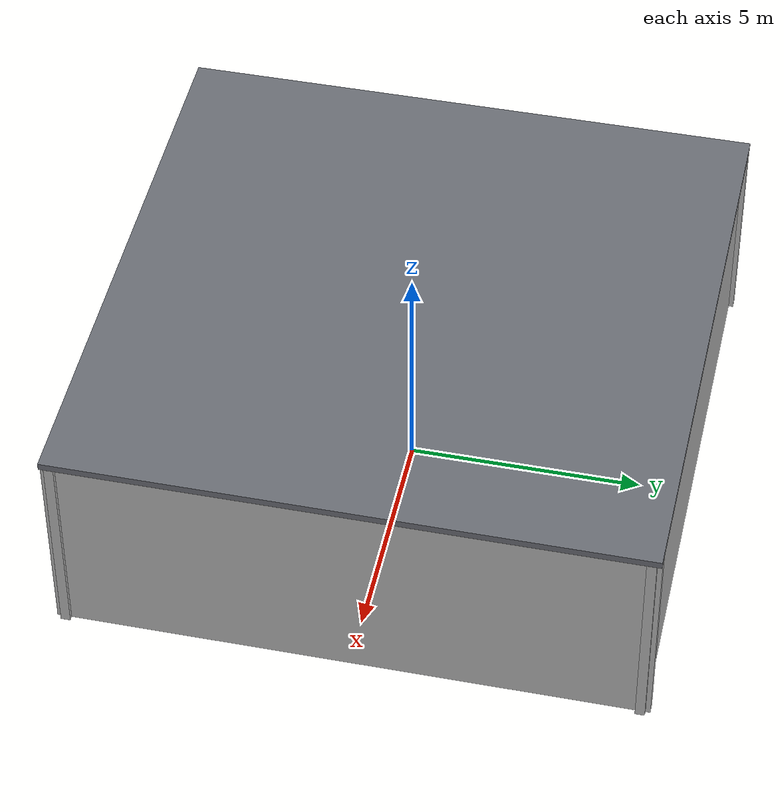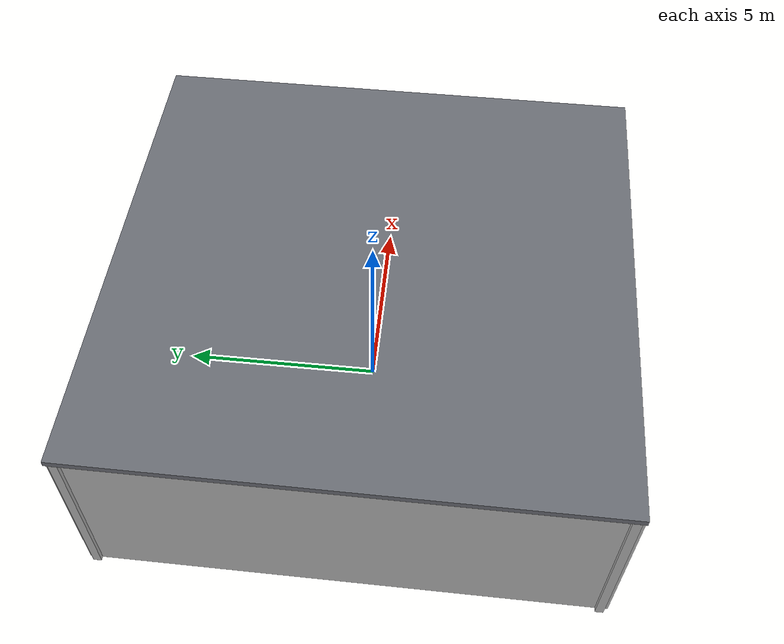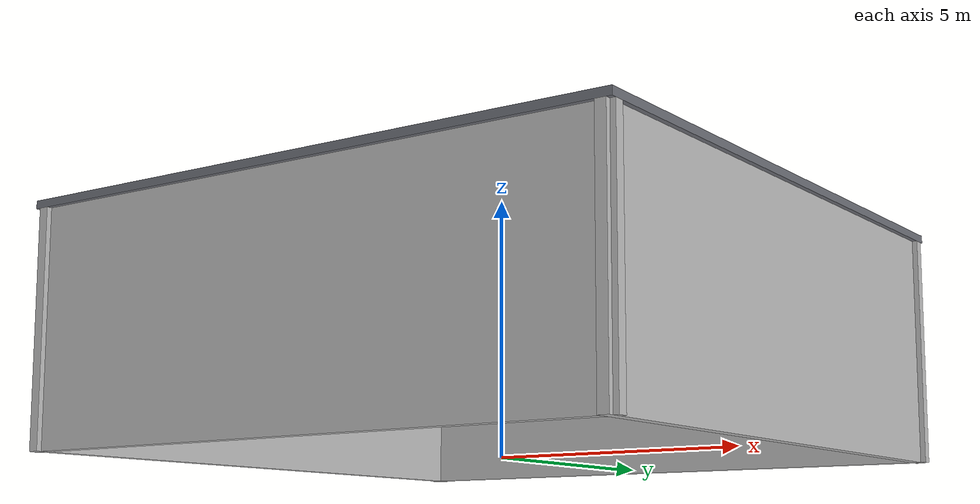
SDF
<?xml version="1.0"?>
<sdf version="1.6">
  <model name="warehouse">
    <static>true</static>
    <link name="link">
      <visual name="wall_n_v">
        <pose>0 6.0 2.25 0 0 0</pose>
        <geometry><box><size>12.4 0.2 4.5</size></box></geometry>
        <material><script>
          <uri>model://warehouse/materials/scripts</uri>
          <uri>model://warehouse/materials/textures</uri>
          <name>MRF/WallConcrete</name></script></material>
      </visual>
      <collision name="wall_n_c">
        <pose>0 6.0 2.25 0 0 0</pose>
        <geometry><box><size>12.4 0.2 4.5</size></box></geometry>
      </collision>
      <visual name="wall_s_v">
        <pose>0 -6.0 2.25 0 0 0</pose>
        <geometry><box><size>12.4 0.2 4.5</size></box></geometry>
        <material><script>
          <uri>model://warehouse/materials/scripts</uri>
          <uri>model://warehouse/materials/textures</uri>
          <name>MRF/WallConcrete</name></script></material>
      </visual>
      <collision name="wall_s_c">
        <pose>0 -6.0 2.25 0 0 0</pose>
        <geometry><box><size>12.4 0.2 4.5</size></box></geometry>
      </collision>
      <visual name="wall_e_v">
        <pose>6.0 0 2.25 0 0 0</pose>
        <geometry><box><size>0.2 12.4 4.5</size></box></geometry>
        <material><script>
          <uri>model://warehouse/materials/scripts</uri>
          <uri>model://warehouse/materials/textures</uri>
          <name>MRF/WallConcrete</name></script></material>
      </visual>
      <collision name="wall_e_c">
        <pose>6.0 0 2.25 0 0 0</pose>
        <geometry><box><size>0.2 12.4 4.5</size></box></geometry>
      </collision>
      <visual name="wall_w_v">
        <pose>-6.0 0 2.25 0 0 0</pose>
        <geometry><box><size>0.2 12.4 4.5</size></box></geometry>
        <material><script>
          <uri>model://warehouse/materials/scripts</uri>
          <uri>model://warehouse/materials/textures</uri>
          <name>MRF/WallConcrete</name></script></material>
      </visual>
      <collision name="wall_w_c">
        <pose>-6.0 0 2.25 0 0 0</pose>
        <geometry><box><size>0.2 12.4 4.5</size></box></geometry>
      </collision>
      <visual name="roof_v">
        <pose>0 0 4.575 0 0 0</pose>
        <geometry><box><size>12.4 12.4 0.15</size></box></geometry>
        <material><ambient>0.32 0.33 0.35 1</ambient><diffuse>0.42 0.43 0.46 1</diffuse><specular>0.05 0.05 0.05 1 4</specular></material>
      </visual>
      <visual name="truss_x0_v">
        <pose>0 -4 4.2 0 0 0</pose>
        <geometry><box><size>12.0 0.1 0.22</size></box></geometry>
        <material><ambient>0.13 0.13 0.15 1</ambient><diffuse>0.18 0.18 0.20 1</diffuse><specular>0.05 0.05 0.05 1 4</specular></material>
      </visual>
      <visual name="truss_x1_v">
        <pose>0 0 4.2 0 0 0</pose>
        <geometry><box><size>12.0 0.1 0.22</size></box></geometry>
        <material><ambient>0.13 0.13 0.15 1</ambient><diffuse>0.18 0.18 0.20 1</diffuse><specular>0.05 0.05 0.05 1 4</specular></material>
      </visual>
      <visual name="truss_x2_v">
        <pose>0 4 4.2 0 0 0</pose>
        <geometry><box><size>12.0 0.1 0.22</size></box></geometry>
        <material><ambient>0.13 0.13 0.15 1</ambient><diffuse>0.18 0.18 0.20 1</diffuse><specular>0.05 0.05 0.05 1 4</specular></material>
      </visual>
      <visual name="truss_y0_v">
        <pose>-3 0 4.12 0 0 0</pose>
        <geometry><box><size>0.1 12.0 0.22</size></box></geometry>
        <material><ambient>0.13 0.13 0.15 1</ambient><diffuse>0.18 0.18 0.20 1</diffuse><specular>0.05 0.05 0.05 1 4</specular></material>
      </visual>
      <visual name="truss_y1_v">
        <pose>3 0 4.12 0 0 0</pose>
        <geometry><box><size>0.1 12.0 0.22</size></box></geometry>
        <material><ambient>0.13 0.13 0.15 1</ambient><diffuse>0.18 0.18 0.20 1</diffuse><specular>0.05 0.05 0.05 1 4</specular></material>
      </visual>
      <visual name="rod0_v">
        <pose>-3 -3 3.8 0 0 0</pose>
        <geometry><cylinder><radius>0.018</radius><length>0.5</length></cylinder></geometry>
        <material><ambient>0.13 0.13 0.15 1</ambient><diffuse>0.18 0.18 0.20 1</diffuse><specular>0.05 0.05 0.05 1 4</specular></material>
      </visual>
      <visual name="shade0_v">
        <pose>-3 -3 3.55 0 0 0</pose>
        <geometry><cylinder><radius>0.13</radius><length>0.1</length></cylinder></geometry>
        <material><ambient>0.13 0.13 0.15 1</ambient><diffuse>0.18 0.18 0.20 1</diffuse><specular>0.05 0.05 0.05 1 4</specular></material>
      </visual>
      <visual name="lamp0_v">
        <pose>-3 -3 3.5 0 0 0</pose>
        <geometry><cylinder><radius>0.1</radius><length>0.025</length></cylinder></geometry>
        <material><ambient>1 0.98 0.9 1</ambient><diffuse>1 0.98 0.9 1</diffuse><specular>0 0 0 1</specular><emissive>1 0.96 0.85 1</emissive></material>
      </visual>
      <visual name="rod1_v">
        <pose>-3 3 3.8 0 0 0</pose>
        <geometry><cylinder><radius>0.018</radius><length>0.5</length></cylinder></geometry>
        <material><ambient>0.13 0.13 0.15 1</ambient><diffuse>0.18 0.18 0.20 1</diffuse><specular>0.05 0.05 0.05 1 4</specular></material>
      </visual>
      <visual name="shade1_v">
        <pose>-3 3 3.55 0 0 0</pose>
        <geometry><cylinder><radius>0.13</radius><length>0.1</length></cylinder></geometry>
        <material><ambient>0.13 0.13 0.15 1</ambient><diffuse>0.18 0.18 0.20 1</diffuse><specular>0.05 0.05 0.05 1 4</specular></material>
      </visual>
      <visual name="lamp1_v">
        <pose>-3 3 3.5 0 0 0</pose>
        <geometry><cylinder><radius>0.1</radius><length>0.025</length></cylinder></geometry>
        <material><ambient>1 0.98 0.9 1</ambient><diffuse>1 0.98 0.9 1</diffuse><specular>0 0 0 1</specular><emissive>1 0.96 0.85 1</emissive></material>
      </visual>
      <visual name="rod2_v">
        <pose>0 -3 3.8 0 0 0</pose>
        <geometry><cylinder><radius>0.018</radius><length>0.5</length></cylinder></geometry>
        <material><ambient>0.13 0.13 0.15 1</ambient><diffuse>0.18 0.18 0.20 1</diffuse><specular>0.05 0.05 0.05 1 4</specular></material>
      </visual>
      <visual name="shade2_v">
        <pose>0 -3 3.55 0 0 0</pose>
        <geometry><cylinder><radius>0.13</radius><length>0.1</length></cylinder></geometry>
        <material><ambient>0.13 0.13 0.15 1</ambient><diffuse>0.18 0.18 0.20 1</diffuse><specular>0.05 0.05 0.05 1 4</specular></material>
      </visual>
      <visual name="lamp2_v">
        <pose>0 -3 3.5 0 0 0</pose>
        <geometry><cylinder><radius>0.1</radius><length>0.025</length></cylinder></geometry>
        <material><ambient>1 0.98 0.9 1</ambient><diffuse>1 0.98 0.9 1</diffuse><specular>0 0 0 1</specular><emissive>1 0.96 0.85 1</emissive></material>
      </visual>
      <visual name="rod3_v">
        <pose>0 3 3.8 0 0 0</pose>
        <geometry><cylinder><radius>0.018</radius><length>0.5</length></cylinder></geometry>
        <material><ambient>0.13 0.13 0.15 1</ambient><diffuse>0.18 0.18 0.20 1</diffuse><specular>0.05 0.05 0.05 1 4</specular></material>
      </visual>
      <visual name="shade3_v">
        <pose>0 3 3.55 0 0 0</pose>
        <geometry><cylinder><radius>0.13</radius><length>0.1</length></cylinder></geometry>
        <material><ambient>0.13 0.13 0.15 1</ambient><diffuse>0.18 0.18 0.20 1</diffuse><specular>0.05 0.05 0.05 1 4</specular></material>
      </visual>
      <visual name="lamp3_v">
        <pose>0 3 3.5 0 0 0</pose>
        <geometry><cylinder><radius>0.1</radius><length>0.025</length></cylinder></geometry>
        <material><ambient>1 0.98 0.9 1</ambient><diffuse>1 0.98 0.9 1</diffuse><specular>0 0 0 1</specular><emissive>1 0.96 0.85 1</emissive></material>
      </visual>
      <visual name="rod4_v">
        <pose>3 -3 3.8 0 0 0</pose>
        <geometry><cylinder><radius>0.018</radius><length>0.5</length></cylinder></geometry>
        <material><ambient>0.13 0.13 0.15 1</ambient><diffuse>0.18 0.18 0.20 1</diffuse><specular>0.05 0.05 0.05 1 4</specular></material>
      </visual>
      <visual name="shade4_v">
        <pose>3 -3 3.55 0 0 0</pose>
        <geometry><cylinder><radius>0.13</radius><length>0.1</length></cylinder></geometry>
        <material><ambient>0.13 0.13 0.15 1</ambient><diffuse>0.18 0.18 0.20 1</diffuse><specular>0.05 0.05 0.05 1 4</specular></material>
      </visual>
      <visual name="lamp4_v">
        <pose>3 -3 3.5 0 0 0</pose>
        <geometry><cylinder><radius>0.1</radius><length>0.025</length></cylinder></geometry>
        <material><ambient>1 0.98 0.9 1</ambient><diffuse>1 0.98 0.9 1</diffuse><specular>0 0 0 1</specular><emissive>1 0.96 0.85 1</emissive></material>
      </visual>
      <visual name="rod5_v">
        <pose>3 3 3.8 0 0 0</pose>
        <geometry><cylinder><radius>0.018</radius><length>0.5</length></cylinder></geometry>
        <material><ambient>0.13 0.13 0.15 1</ambient><diffuse>0.18 0.18 0.20 1</diffuse><specular>0.05 0.05 0.05 1 4</specular></material>
      </visual>
      <visual name="shade5_v">
        <pose>3 3 3.55 0 0 0</pose>
        <geometry><cylinder><radius>0.13</radius><length>0.1</length></cylinder></geometry>
        <material><ambient>0.13 0.13 0.15 1</ambient><diffuse>0.18 0.18 0.20 1</diffuse><specular>0.05 0.05 0.05 1 4</specular></material>
      </visual>
      <visual name="lamp5_v">
        <pose>3 3 3.5 0 0 0</pose>
        <geometry><cylinder><radius>0.1</radius><length>0.025</length></cylinder></geometry>
        <material><ambient>1 0.98 0.9 1</ambient><diffuse>1 0.98 0.9 1</diffuse><specular>0 0 0 1</specular><emissive>1 0.96 0.85 1</emissive></material>
      </visual>
    </link>
  </model>
</sdf>
